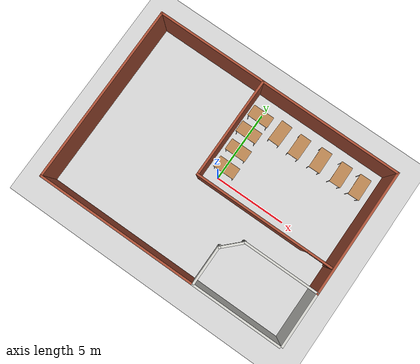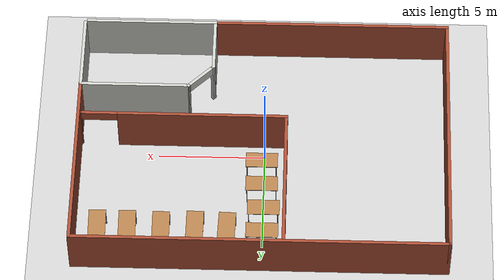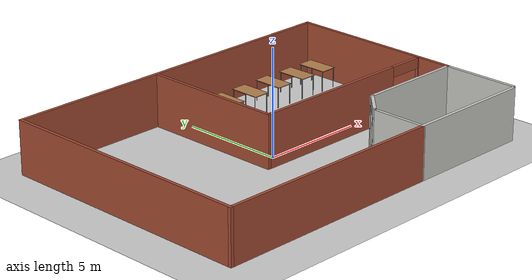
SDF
<sdf version="1.7">
 <world name="default">
  <light name="sun" type="directional">
   <pose>0 0 10 0 -0 0</pose>
   <diffuse>0.8 0.8 0.8 1</diffuse>
   <specular>0.2 0.2 0.2 1</specular>
   <attenuation>
    <range>1000</range>
    <constant>0.9</constant>
    <linear>0.01</linear>
    <quadratic>0.001</quadratic>
   </attenuation>
   <direction>-0.5 0.1 -0.9</direction>
   <spot><inner_angle>0</inner_angle><outer_angle>0</outer_angle><falloff>0</falloff></spot>
  </light>
  <model name="ground_plane">
   <static>1</static>
   <link name="link">
    <collision name="collision">
     <geometry><plane><normal>0 0 1</normal><size>100 100</size></plane></geometry>
     <surface><friction><ode><mu>100</mu><mu2>50</mu2></ode></friction></surface>
    </collision>
    <visual name="visual">
     <cast_shadows>0</cast_shadows>
     <geometry><plane><normal>0 0 1</normal><size>100 100</size></plane></geometry>
     <material>
      <script><uri>file://media/materials/scripts/gazebo.material</uri><name>Gazebo/Grey</name></script>
     </material>
    </visual>
   </link>
  </model>
  <gravity>0 0 -9.8</gravity>
  <magnetic_field>6e-06 2.3e-05 -4.2e-05</magnetic_field>
  <atmosphere type="adiabatic"/>
  <physics type="ode">
   <max_step_size>0.001</max_step_size>
   <real_time_factor>1</real_time_factor>
   <real_time_update_rate>1000</real_time_update_rate>
  </physics>
  <scene><ambient>0.4 0.4 0.4 1</ambient><background>0.7 0.7 0.7 1</background><shadows>1</shadows></scene>
  <spherical_coordinates>
   <surface_model>EARTH_WGS84</surface_model>
   <latitude_deg>0</latitude_deg>
   <longitude_deg>0</longitude_deg>
   <elevation>0</elevation>
   <heading_deg>0</heading_deg>
  </spherical_coordinates>
  <model name="FloorPlan1BHK">
   <pose>0.093457 0.037177 0 0 -0 0</pose>
   <link name="Wall_0">
    <collision name="Wall_0_Collision">
     <geometry><box><size>17.5 0.15 2.5</size></box></geometry>
     <pose>0 0 1.25 0 -0 0</pose>
    </collision>
    <visual name="Wall_0_Visual">
     <pose>0 0 1.25 0 -0 0</pose>
     <geometry><box><size>17.5 0.15 2.5</size></box></geometry>
     <material>
      <script><uri>file://media/materials/scripts/gazebo.material</uri><name>Gazebo/Bricks</name></script>
      <ambient>1 1 1 1</ambient>
     </material>
     <meta><layer>0</layer></meta>
    </visual>
    <pose>0 6.17506 0 0 -0 0</pose>
   </link>
   <link name="Wall_10">
    <collision name="Wall_10_Collision">
     <geometry><box><size>2.77214 0.15 2.5</size></box></geometry>
     <pose>0 0 1.25 0 -0 0</pose>
    </collision>
    <visual name="Wall_10_Visual">
     <pose>0 0 1.25 0 -0 0</pose>
     <geometry><box><size>2.77214 0.15 2.5</size></box></geometry>
     <material>
      <script><uri>file://media/materials/scripts/gazebo.material</uri><name>Gazebo/CeilingTiled</name></script>
      <ambient>1 1 1 1</ambient>
     </material>
     <meta><layer>0</layer></meta>
    </visual>
    <pose>2.42713 -4.86387 0 0 -0 1.56917</pose>
   </link>
   <link name="Wall_11">
    <pose>2.99494 -2.98712 0 0 -0 0.785398</pose>
    <visual name="Wall_11_Visual_0">
     <pose>-0.778435 0 1.25 0 -0 0</pose>
     <geometry><box><size>0.19313 0.15 2.5</size></box></geometry>
     <material>
      <script><uri>file://media/materials/scripts/gazebo.material</uri><name>Gazebo/CeilingTiled</name></script>
      <ambient>1 1 1 1</ambient>
     </material>
     <meta><layer>0</layer></meta>
    </visual>
    <collision name="Wall_11_Collision_0">
     <geometry><box><size>0.19313 0.15 2.5</size></box></geometry>
     <pose>-0.778435 0 1.25 0 -0 0</pose>
    </collision>
    <visual name="Wall_11_Visual_1">
     <pose>0.80968 0 1.25 0 -0 0</pose>
     <geometry><box><size>0.13064 0.15 2.5</size></box></geometry>
     <material>
      <script><uri>file://media/materials/scripts/gazebo.material</uri><name>Gazebo/CeilingTiled</name></script>
      <ambient>1 1 1 1</ambient>
     </material>
     <meta><layer>0</layer></meta>
    </visual>
    <collision name="Wall_11_Collision_1">
     <geometry><box><size>0.13064 0.15 2.5</size></box></geometry>
     <pose>0.80968 0 1.25 0 -0 0</pose>
    </collision>
    <visual name="Wall_11_Visual_2">
     <pose>0.031245 0 2.25 0 -0 0</pose>
     <geometry><box><size>1.42623 0.15 0.5</size></box></geometry>
     <material>
      <script><uri>file://media/materials/scripts/gazebo.material</uri><name>Gazebo/CeilingTiled</name></script>
      <ambient>1 1 1 1</ambient>
     </material>
     <meta><layer>0</layer></meta>
    </visual>
    <collision name="Wall_11_Collision_2">
     <geometry><box><size>1.42623 0.15 0.5</size></box></geometry>
     <pose>0.031245 0 2.25 0 -0 0</pose>
    </collision>
   </link>
   <link name="Wall_12">
    <collision name="Wall_12_Collision">
     <geometry><box><size>5.25 0.15 2.5</size></box></geometry>
     <pose>0 0 1.25 0 -0 0</pose>
    </collision>
    <visual name="Wall_12_Visual">
     <pose>0 0 1.25 0 -0 0</pose>
     <geometry><box><size>5.25 0.15 2.5</size></box></geometry>
     <material>
      <script><uri>file://media/materials/scripts/gazebo.material</uri><name>Gazebo/CeilingTiled</name></script>
      <ambient>1 1 1 1</ambient>
     </material>
     <meta><layer>0</layer></meta>
    </visual>
    <pose>6.11062 -2.42143 0 0 -0 0</pose>
   </link>
   <link name="Wall_14">
    <collision name="Wall_14_Collision">
     <geometry><box><size>11.25 0.15 2.5</size></box></geometry>
     <pose>0 0 1.25 0 -0 0</pose>
    </collision>
    <visual name="Wall_14_Visual">
     <pose>0 0 1.25 0 -0 0</pose>
     <geometry><box><size>11.25 0.15 2.5</size></box></geometry>
     <material>
      <script><uri>file://media/materials/scripts/gazebo.material</uri><name>Gazebo/Bricks</name></script>
      <ambient>1 1 1 1</ambient>
     </material>
     <meta><layer>0</layer></meta>
    </visual>
    <pose>-3.125 -6.17494 0 0 -0 3.14159</pose>
   </link>
   <link name="Wall_16">
    <collision name="Wall_16_Collision">
     <geometry><box><size>8.75 0.15 2.5</size></box></geometry>
     <pose>0 0 1.25 0 -0 0</pose>
    </collision>
    <visual name="Wall_16_Visual">
     <pose>0 0 1.25 0 -0 0</pose>
     <geometry><box><size>8.75 0.15 2.5</size></box></geometry>
     <material>
      <script><uri>file://media/materials/scripts/gazebo.material</uri><name>Gazebo/Bricks</name></script>
      <ambient>1 1 1 1</ambient>
     </material>
     <meta><layer>0</layer></meta>
    </visual>
    <pose>8.675 1.87506 0 0 -0 -1.5708</pose>
   </link>
   <link name="Wall_25">
    <collision name="Wall_25_Collision">
     <geometry><box><size>3.75 0.15 2.5</size></box></geometry>
     <pose>0 0 1.25 0 -0 0</pose>
    </collision>
    <visual name="Wall_25_Visual">
     <pose>0 0 1.25 0 -0 0</pose>
     <geometry><box><size>3.75 0.15 2.5</size></box></geometry>
     <material>
      <script><uri>file://media/materials/scripts/gazebo.material</uri><name>Gazebo/CeilingTiled</name></script>
      <ambient>1 1 1 1</ambient>
     </material>
     <meta><layer>0</layer></meta>
    </visual>
    <pose>8.66896 -4.25988 0 0 -0 1.5708</pose>
   </link>
   <link name="Wall_27">
    <collision name="Wall_27_Collision">
     <geometry><box><size>6.25 0.15 2.5</size></box></geometry>
     <pose>0 0 1.25 0 -0 0</pose>
    </collision>
    <visual name="Wall_27_Visual">
     <pose>0 0 1.25 0 -0 0</pose>
     <geometry><box><size>6.25 0.15 2.5</size></box></geometry>
     <material>
      <script><uri>file://media/materials/scripts/gazebo.material</uri><name>Gazebo/CeilingTiled</name></script>
      <ambient>1 1 1 1</ambient>
     </material>
     <meta><layer>0</layer></meta>
    </visual>
    <pose>5.475 -6.17494 0 0 -0 0</pose>
   </link>
   <link name="Wall_5">
    <collision name="Wall_5_Collision">
     <geometry><box><size>12.5 0.15 2.5</size></box></geometry>
     <pose>0 0 1.25 0 -0 0</pose>
    </collision>
    <visual name="Wall_5_Visual">
     <pose>0 0 1.25 0 -0 0</pose>
     <geometry><box><size>12.5 0.15 2.5</size></box></geometry>
     <material>
      <script><uri>file://media/materials/scripts/gazebo.material</uri><name>Gazebo/Bricks</name></script>
      <ambient>1 1 1 1</ambient>
     </material>
     <meta><layer>0</layer></meta>
    </visual>
    <pose>-8.675 6e-05 0 0 -0 1.5708</pose>
   </link>
   <link name="Wall_7">
    <collision name="Wall_7_Collision">
     <geometry><box><size>7 0.15 2.5</size></box></geometry>
     <pose>0 0 1.25 0 -0 0</pose>
    </collision>
    <visual name="Wall_7_Visual">
     <pose>0 0 1.25 0 -0 0</pose>
     <geometry><box><size>7 0.15 2.5</size></box></geometry>
     <material>
      <script><uri>file://media/materials/scripts/gazebo.material</uri><name>Gazebo/Bricks</name></script>
      <ambient>1 1 1 1</ambient>
     </material>
     <meta><layer>0</layer></meta>
    </visual>
    <pose>-1.08862 2.68888 0 0 -0 -1.5708</pose>
   </link>
   <link name="Wall_8">
    <pose>3.71138 -0.73612 0 0 -0 0</pose>
    <visual name="Wall_8_Visual_0">
     <pose>-0.867842 0 1.25 0 -0 0</pose>
     <geometry><box><size>8.01432 0.15 2.5</size></box></geometry>
     <material>
      <script><uri>file://media/materials/scripts/gazebo.material</uri><name>Gazebo/Bricks</name></script>
      <ambient>1 1 1 1</ambient>
     </material>
     <meta><layer>0</layer></meta>
    </visual>
    <collision name="Wall_8_Collision_0">
     <geometry><box><size>8.01432 0.15 2.5</size></box></geometry>
     <pose>-0.867842 0 1.25 0 -0 0</pose>
    </collision>
    <visual name="Wall_8_Visual_1">
     <pose>4.84937 0 1.25 0 -0 0</pose>
     <geometry><box><size>0.051255 0.15 2.5</size></box></geometry>
     <material>
      <script><uri>file://media/materials/scripts/gazebo.material</uri><name>Gazebo/Bricks</name></script>
      <ambient>1 1 1 1</ambient>
     </material>
     <meta><layer>0</layer></meta>
    </visual>
    <collision name="Wall_8_Collision_1">
     <geometry><box><size>0.051255 0.15 2.5</size></box></geometry>
     <pose>4.84937 0 1.25 0 -0 0</pose>
    </collision>
    <visual name="Wall_8_Visual_2">
     <pose>3.98153 0 2.25 0 -0 0</pose>
     <geometry><box><size>1.68443 0.15 0.5</size></box></geometry>
     <material>
      <script><uri>file://media/materials/scripts/gazebo.material</uri><name>Gazebo/Bricks</name></script>
      <ambient>1 1 1 1</ambient>
     </material>
     <meta><layer>0</layer></meta>
    </visual>
    <collision name="Wall_8_Collision_2">
     <geometry><box><size>1.68443 0.15 0.5</size></box></geometry>
     <pose>3.98153 0 2.25 0 -0 0</pose>
    </collision>
   </link>
   <static>1</static>
  </model>
  <model name="table">
   <static>1</static>
   <link name="link">
    <collision name="surface">
     <pose>0 0 1 0 -0 0</pose>
     <geometry><box><size>1.5 0.8 0.03</size></box></geometry>
     <surface><friction><ode><mu>0.6</mu><mu2>0.6</mu2></ode></friction></surface>
    </collision>
    <visual name="visual1">
     <pose>0 0 1 0 -0 0</pose>
     <geometry><box><size>1.5 0.8 0.03</size></box></geometry>
     <material>
      <script><uri>file://media/materials/scripts/gazebo.material</uri><name>Gazebo/Wood</name></script>
     </material>
    </visual>
    <collision name="front_left_leg">
     <pose>0.68 0.38 0.5 0 -0 0</pose>
     <geometry><cylinder><radius>0.02</radius><length>1</length></cylinder></geometry>
    </collision>
    <visual name="front_left_leg">
     <pose>0.68 0.38 0.5 0 -0 0</pose>
     <geometry><cylinder><radius>0.02</radius><length>1</length></cylinder></geometry>
     <material>
      <script><uri>file://media/materials/scripts/gazebo.material</uri><name>Gazebo/Grey</name></script>
     </material>
    </visual>
    <collision name="front_right_leg">
     <pose>0.68 -0.38 0.5 0 -0 0</pose>
     <geometry><cylinder><radius>0.02</radius><length>1</length></cylinder></geometry>
    </collision>
    <visual name="front_right_leg">
     <pose>0.68 -0.38 0.5 0 -0 0</pose>
     <geometry><cylinder><radius>0.02</radius><length>1</length></cylinder></geometry>
     <material>
      <script><uri>file://media/materials/scripts/gazebo.material</uri><name>Gazebo/Grey</name></script>
     </material>
    </visual>
    <collision name="back_right_leg">
     <pose>-0.68 -0.38 0.5 0 -0 0</pose>
     <geometry><cylinder><radius>0.02</radius><length>1</length></cylinder></geometry>
    </collision>
    <visual name="back_right_leg">
     <pose>-0.68 -0.38 0.5 0 -0 0</pose>
     <geometry><cylinder><radius>0.02</radius><length>1</length></cylinder></geometry>
     <material>
      <script><uri>file://media/materials/scripts/gazebo.material</uri><name>Gazebo/Grey</name></script>
     </material>
    </visual>
    <collision name="back_left_leg">
     <pose>-0.68 0.38 0.5 0 -0 0</pose>
     <geometry><cylinder><radius>0.02</radius><length>1</length></cylinder></geometry>
    </collision>
    <visual name="back_left_leg">
     <pose>-0.68 0.38 0.5 0 -0 0</pose>
     <geometry><cylinder><radius>0.02</radius><length>1</length></cylinder></geometry>
     <material>
      <script><uri>file://media/materials/scripts/gazebo.material</uri><name>Gazebo/Grey</name></script>
     </material>
    </visual>
   </link>
   <pose>1.64923 4.51874 0 0 -0 1.53697</pose>
  </model>
  <model name="table_0">
   <static>1</static>
   <link name="link">
    <collision name="surface">
     <pose>0 0 1 0 -0 0</pose>
     <geometry><box><size>1.5 0.8 0.03</size></box></geometry>
     <surface><friction><ode><mu>0.6</mu><mu2>0.6</mu2></ode></friction></surface>
    </collision>
    <visual name="visual1">
     <pose>0 0 1 0 -0 0</pose>
     <geometry><box><size>1.5 0.8 0.03</size></box></geometry>
     <material>
      <script><uri>file://media/materials/scripts/gazebo.material</uri><name>Gazebo/Wood</name></script>
     </material>
    </visual>
    <collision name="front_left_leg">
     <pose>0.68 0.38 0.5 0 -0 0</pose>
     <geometry><cylinder><radius>0.02</radius><length>1</length></cylinder></geometry>
    </collision>
    <visual name="front_left_leg">
     <pose>0.68 0.38 0.5 0 -0 0</pose>
     <geometry><cylinder><radius>0.02</radius><length>1</length></cylinder></geometry>
     <material>
      <script><uri>file://media/materials/scripts/gazebo.material</uri><name>Gazebo/Grey</name></script>
     </material>
    </visual>
    <collision name="front_right_leg">
     <pose>0.68 -0.38 0.5 0 -0 0</pose>
     <geometry><cylinder><radius>0.02</radius><length>1</length></cylinder></geometry>
    </collision>
    <visual name="front_right_leg">
     <pose>0.68 -0.38 0.5 0 -0 0</pose>
     <geometry><cylinder><radius>0.02</radius><length>1</length></cylinder></geometry>
     <material>
      <script><uri>file://media/materials/scripts/gazebo.material</uri><name>Gazebo/Grey</name></script>
     </material>
    </visual>
    <collision name="back_right_leg">
     <pose>-0.68 -0.38 0.5 0 -0 0</pose>
     <geometry><cylinder><radius>0.02</radius><length>1</length></cylinder></geometry>
    </collision>
    <visual name="back_right_leg">
     <pose>-0.68 -0.38 0.5 0 -0 0</pose>
     <geometry><cylinder><radius>0.02</radius><length>1</length></cylinder></geometry>
     <material>
      <script><uri>file://media/materials/scripts/gazebo.material</uri><name>Gazebo/Grey</name></script>
     </material>
    </visual>
    <collision name="back_left_leg">
     <pose>-0.68 0.38 0.5 0 -0 0</pose>
     <geometry><cylinder><radius>0.02</radius><length>1</length></cylinder></geometry>
    </collision>
    <visual name="back_left_leg">
     <pose>-0.68 0.38 0.5 0 -0 0</pose>
     <geometry><cylinder><radius>0.02</radius><length>1</length></cylinder></geometry>
     <material>
      <script><uri>file://media/materials/scripts/gazebo.material</uri><name>Gazebo/Grey</name></script>
     </material>
    </visual>
   </link>
   <pose>3.1259 4.48609 0 0 0 -1.57662</pose>
  </model>
  <model name="table_1">
   <static>1</static>
   <link name="link">
    <collision name="surface">
     <pose>0 0 1 0 -0 0</pose>
     <geometry><box><size>1.5 0.8 0.03</size></box></geometry>
     <surface><friction><ode><mu>0.6</mu><mu2>0.6</mu2></ode></friction></surface>
    </collision>
    <visual name="visual1">
     <pose>0 0 1 0 -0 0</pose>
     <geometry><box><size>1.5 0.8 0.03</size></box></geometry>
     <material>
      <script><uri>file://media/materials/scripts/gazebo.material</uri><name>Gazebo/Wood</name></script>
     </material>
    </visual>
    <collision name="front_left_leg">
     <pose>0.68 0.38 0.5 0 -0 0</pose>
     <geometry><cylinder><radius>0.02</radius><length>1</length></cylinder></geometry>
    </collision>
    <visual name="front_left_leg">
     <pose>0.68 0.38 0.5 0 -0 0</pose>
     <geometry><cylinder><radius>0.02</radius><length>1</length></cylinder></geometry>
     <material>
      <script><uri>file://media/materials/scripts/gazebo.material</uri><name>Gazebo/Grey</name></script>
     </material>
    </visual>
    <collision name="front_right_leg">
     <pose>0.68 -0.38 0.5 0 -0 0</pose>
     <geometry><cylinder><radius>0.02</radius><length>1</length></cylinder></geometry>
    </collision>
    <visual name="front_right_leg">
     <pose>0.68 -0.38 0.5 0 -0 0</pose>
     <geometry><cylinder><radius>0.02</radius><length>1</length></cylinder></geometry>
     <material>
      <script><uri>file://media/materials/scripts/gazebo.material</uri><name>Gazebo/Grey</name></script>
     </material>
    </visual>
    <collision name="back_right_leg">
     <pose>-0.68 -0.38 0.5 0 -0 0</pose>
     <geometry><cylinder><radius>0.02</radius><length>1</length></cylinder></geometry>
    </collision>
    <visual name="back_right_leg">
     <pose>-0.68 -0.38 0.5 0 -0 0</pose>
     <geometry><cylinder><radius>0.02</radius><length>1</length></cylinder></geometry>
     <material>
      <script><uri>file://media/materials/scripts/gazebo.material</uri><name>Gazebo/Grey</name></script>
     </material>
    </visual>
    <collision name="back_left_leg">
     <pose>-0.68 0.38 0.5 0 -0 0</pose>
     <geometry><cylinder><radius>0.02</radius><length>1</length></cylinder></geometry>
    </collision>
    <visual name="back_left_leg">
     <pose>-0.68 0.38 0.5 0 -0 0</pose>
     <geometry><cylinder><radius>0.02</radius><length>1</length></cylinder></geometry>
     <material>
      <script><uri>file://media/materials/scripts/gazebo.material</uri><name>Gazebo/Grey</name></script>
     </material>
    </visual>
   </link>
   <pose>4.69432 4.55041 0 0 0 -1.56217</pose>
  </model>
  <model name="table_2">
   <static>1</static>
   <link name="link">
    <collision name="surface">
     <pose>0 0 1 0 -0 0</pose>
     <geometry><box><size>1.5 0.8 0.03</size></box></geometry>
     <surface><friction><ode><mu>0.6</mu><mu2>0.6</mu2></ode></friction></surface>
    </collision>
    <visual name="visual1">
     <pose>0 0 1 0 -0 0</pose>
     <geometry><box><size>1.5 0.8 0.03</size></box></geometry>
     <material>
      <script><uri>file://media/materials/scripts/gazebo.material</uri><name>Gazebo/Wood</name></script>
     </material>
    </visual>
    <collision name="front_left_leg">
     <pose>0.68 0.38 0.5 0 -0 0</pose>
     <geometry><cylinder><radius>0.02</radius><length>1</length></cylinder></geometry>
    </collision>
    <visual name="front_left_leg">
     <pose>0.68 0.38 0.5 0 -0 0</pose>
     <geometry><cylinder><radius>0.02</radius><length>1</length></cylinder></geometry>
     <material>
      <script><uri>file://media/materials/scripts/gazebo.material</uri><name>Gazebo/Grey</name></script>
     </material>
    </visual>
    <collision name="front_right_leg">
     <pose>0.68 -0.38 0.5 0 -0 0</pose>
     <geometry><cylinder><radius>0.02</radius><length>1</length></cylinder></geometry>
    </collision>
    <visual name="front_right_leg">
     <pose>0.68 -0.38 0.5 0 -0 0</pose>
     <geometry><cylinder><radius>0.02</radius><length>1</length></cylinder></geometry>
     <material>
      <script><uri>file://media/materials/scripts/gazebo.material</uri><name>Gazebo/Grey</name></script>
     </material>
    </visual>
    <collision name="back_right_leg">
     <pose>-0.68 -0.38 0.5 0 -0 0</pose>
     <geometry><cylinder><radius>0.02</radius><length>1</length></cylinder></geometry>
    </collision>
    <visual name="back_right_leg">
     <pose>-0.68 -0.38 0.5 0 -0 0</pose>
     <geometry><cylinder><radius>0.02</radius><length>1</length></cylinder></geometry>
     <material>
      <script><uri>file://media/materials/scripts/gazebo.material</uri><name>Gazebo/Grey</name></script>
     </material>
    </visual>
    <collision name="back_left_leg">
     <pose>-0.68 0.38 0.5 0 -0 0</pose>
     <geometry><cylinder><radius>0.02</radius><length>1</length></cylinder></geometry>
    </collision>
    <visual name="back_left_leg">
     <pose>-0.68 0.38 0.5 0 -0 0</pose>
     <geometry><cylinder><radius>0.02</radius><length>1</length></cylinder></geometry>
     <material>
      <script><uri>file://media/materials/scripts/gazebo.material</uri><name>Gazebo/Grey</name></script>
     </material>
    </visual>
   </link>
   <pose>6.25807 4.53402 0 0 0 -1.55344</pose>
  </model>
  <model name="table_3">
   <static>1</static>
   <link name="link">
    <collision name="surface">
     <pose>0 0 1 0 -0 0</pose>
     <geometry><box><size>1.5 0.8 0.03</size></box></geometry>
     <surface><friction><ode><mu>0.6</mu><mu2>0.6</mu2></ode></friction></surface>
    </collision>
    <visual name="visual1">
     <pose>0 0 1 0 -0 0</pose>
     <geometry><box><size>1.5 0.8 0.03</size></box></geometry>
     <material>
      <script><uri>file://media/materials/scripts/gazebo.material</uri><name>Gazebo/Wood</name></script>
     </material>
    </visual>
    <collision name="front_left_leg">
     <pose>0.68 0.38 0.5 0 -0 0</pose>
     <geometry><cylinder><radius>0.02</radius><length>1</length></cylinder></geometry>
    </collision>
    <visual name="front_left_leg">
     <pose>0.68 0.38 0.5 0 -0 0</pose>
     <geometry><cylinder><radius>0.02</radius><length>1</length></cylinder></geometry>
     <material>
      <script><uri>file://media/materials/scripts/gazebo.material</uri><name>Gazebo/Grey</name></script>
     </material>
    </visual>
    <collision name="front_right_leg">
     <pose>0.68 -0.38 0.5 0 -0 0</pose>
     <geometry><cylinder><radius>0.02</radius><length>1</length></cylinder></geometry>
    </collision>
    <visual name="front_right_leg">
     <pose>0.68 -0.38 0.5 0 -0 0</pose>
     <geometry><cylinder><radius>0.02</radius><length>1</length></cylinder></geometry>
     <material>
      <script><uri>file://media/materials/scripts/gazebo.material</uri><name>Gazebo/Grey</name></script>
     </material>
    </visual>
    <collision name="back_right_leg">
     <pose>-0.68 -0.38 0.5 0 -0 0</pose>
     <geometry><cylinder><radius>0.02</radius><length>1</length></cylinder></geometry>
    </collision>
    <visual name="back_right_leg">
     <pose>-0.68 -0.38 0.5 0 -0 0</pose>
     <geometry><cylinder><radius>0.02</radius><length>1</length></cylinder></geometry>
     <material>
      <script><uri>file://media/materials/scripts/gazebo.material</uri><name>Gazebo/Grey</name></script>
     </material>
    </visual>
    <collision name="back_left_leg">
     <pose>-0.68 0.38 0.5 0 -0 0</pose>
     <geometry><cylinder><radius>0.02</radius><length>1</length></cylinder></geometry>
    </collision>
    <visual name="back_left_leg">
     <pose>-0.68 0.38 0.5 0 -0 0</pose>
     <geometry><cylinder><radius>0.02</radius><length>1</length></cylinder></geometry>
     <material>
      <script><uri>file://media/materials/scripts/gazebo.material</uri><name>Gazebo/Grey</name></script>
     </material>
    </visual>
   </link>
   <pose>7.64877 4.54148 0 0 0 -1.55441</pose>
  </model>
  <model name="table_4">
   <static>1</static>
   <link name="link">
    <collision name="surface">
     <pose>0 0 1 0 -0 0</pose>
     <geometry><box><size>1.5 0.8 0.03</size></box></geometry>
     <surface><friction><ode><mu>0.6</mu><mu2>0.6</mu2></ode></friction></surface>
    </collision>
    <visual name="visual1">
     <pose>0 0 1 0 -0 0</pose>
     <geometry><box><size>1.5 0.8 0.03</size></box></geometry>
     <material>
      <script><uri>file://media/materials/scripts/gazebo.material</uri><name>Gazebo/Wood</name></script>
     </material>
    </visual>
    <collision name="front_left_leg">
     <pose>0.68 0.38 0.5 0 -0 0</pose>
     <geometry><cylinder><radius>0.02</radius><length>1</length></cylinder></geometry>
    </collision>
    <visual name="front_left_leg">
     <pose>0.68 0.38 0.5 0 -0 0</pose>
     <geometry><cylinder><radius>0.02</radius><length>1</length></cylinder></geometry>
     <material>
      <script><uri>file://media/materials/scripts/gazebo.material</uri><name>Gazebo/Grey</name></script>
     </material>
    </visual>
    <collision name="front_right_leg">
     <pose>0.68 -0.38 0.5 0 -0 0</pose>
     <geometry><cylinder><radius>0.02</radius><length>1</length></cylinder></geometry>
    </collision>
    <visual name="front_right_leg">
     <pose>0.68 -0.38 0.5 0 -0 0</pose>
     <geometry><cylinder><radius>0.02</radius><length>1</length></cylinder></geometry>
     <material>
      <script><uri>file://media/materials/scripts/gazebo.material</uri><name>Gazebo/Grey</name></script>
     </material>
    </visual>
    <collision name="back_right_leg">
     <pose>-0.68 -0.38 0.5 0 -0 0</pose>
     <geometry><cylinder><radius>0.02</radius><length>1</length></cylinder></geometry>
    </collision>
    <visual name="back_right_leg">
     <pose>-0.68 -0.38 0.5 0 -0 0</pose>
     <geometry><cylinder><radius>0.02</radius><length>1</length></cylinder></geometry>
     <material>
      <script><uri>file://media/materials/scripts/gazebo.material</uri><name>Gazebo/Grey</name></script>
     </material>
    </visual>
    <collision name="back_left_leg">
     <pose>-0.68 0.38 0.5 0 -0 0</pose>
     <geometry><cylinder><radius>0.02</radius><length>1</length></cylinder></geometry>
    </collision>
    <visual name="back_left_leg">
     <pose>-0.68 0.38 0.5 0 -0 0</pose>
     <geometry><cylinder><radius>0.02</radius><length>1</length></cylinder></geometry>
     <material>
      <script><uri>file://media/materials/scripts/gazebo.material</uri><name>Gazebo/Grey</name></script>
     </material>
    </visual>
   </link>
   <pose>-0.020977 3.43806 0 0 -0 0</pose>
  </model>
  <model name="table_5">
   <static>1</static>
   <link name="link">
    <collision name="surface">
     <pose>0 0 1 0 -0 0</pose>
     <geometry><box><size>1.5 0.8 0.03</size></box></geometry>
     <surface><friction><ode><mu>0.6</mu><mu2>0.6</mu2></ode></friction></surface>
    </collision>
    <visual name="visual1">
     <pose>0 0 1 0 -0 0</pose>
     <geometry><box><size>1.5 0.8 0.03</size></box></geometry>
     <material>
      <script><uri>file://media/materials/scripts/gazebo.material</uri><name>Gazebo/Wood</name></script>
     </material>
    </visual>
    <collision name="front_left_leg">
     <pose>0.68 0.38 0.5 0 -0 0</pose>
     <geometry><cylinder><radius>0.02</radius><length>1</length></cylinder></geometry>
    </collision>
    <visual name="front_left_leg">
     <pose>0.68 0.38 0.5 0 -0 0</pose>
     <geometry><cylinder><radius>0.02</radius><length>1</length></cylinder></geometry>
     <material>
      <script><uri>file://media/materials/scripts/gazebo.material</uri><name>Gazebo/Grey</name></script>
     </material>
    </visual>
    <collision name="front_right_leg">
     <pose>0.68 -0.38 0.5 0 -0 0</pose>
     <geometry><cylinder><radius>0.02</radius><length>1</length></cylinder></geometry>
    </collision>
    <visual name="front_right_leg">
     <pose>0.68 -0.38 0.5 0 -0 0</pose>
     <geometry><cylinder><radius>0.02</radius><length>1</length></cylinder></geometry>
     <material>
      <script><uri>file://media/materials/scripts/gazebo.material</uri><name>Gazebo/Grey</name></script>
     </material>
    </visual>
    <collision name="back_right_leg">
     <pose>-0.68 -0.38 0.5 0 -0 0</pose>
     <geometry><cylinder><radius>0.02</radius><length>1</length></cylinder></geometry>
    </collision>
    <visual name="back_right_leg">
     <pose>-0.68 -0.38 0.5 0 -0 0</pose>
     <geometry><cylinder><radius>0.02</radius><length>1</length></cylinder></geometry>
     <material>
      <script><uri>file://media/materials/scripts/gazebo.material</uri><name>Gazebo/Grey</name></script>
     </material>
    </visual>
    <collision name="back_left_leg">
     <pose>-0.68 0.38 0.5 0 -0 0</pose>
     <geometry><cylinder><radius>0.02</radius><length>1</length></cylinder></geometry>
    </collision>
    <visual name="back_left_leg">
     <pose>-0.68 0.38 0.5 0 -0 0</pose>
     <geometry><cylinder><radius>0.02</radius><length>1</length></cylinder></geometry>
     <material>
      <script><uri>file://media/materials/scripts/gazebo.material</uri><name>Gazebo/Grey</name></script>
     </material>
    </visual>
   </link>
   <pose>0.016613 4.70366 0 0 -0 0</pose>
  </model>
  <model name="table_6">
   <static>1</static>
   <link name="link">
    <collision name="surface">
     <pose>0 0 1 0 -0 0</pose>
     <geometry><box><size>1.5 0.8 0.03</size></box></geometry>
     <surface><friction><ode><mu>0.6</mu><mu2>0.6</mu2></ode></friction></surface>
    </collision>
    <visual name="visual1">
     <pose>0 0 1 0 -0 0</pose>
     <geometry><box><size>1.5 0.8 0.03</size></box></geometry>
     <material>
      <script><uri>file://media/materials/scripts/gazebo.material</uri><name>Gazebo/Wood</name></script>
     </material>
    </visual>
    <collision name="front_left_leg">
     <pose>0.68 0.38 0.5 0 -0 0</pose>
     <geometry><cylinder><radius>0.02</radius><length>1</length></cylinder></geometry>
    </collision>
    <visual name="front_left_leg">
     <pose>0.68 0.38 0.5 0 -0 0</pose>
     <geometry><cylinder><radius>0.02</radius><length>1</length></cylinder></geometry>
     <material>
      <script><uri>file://media/materials/scripts/gazebo.material</uri><name>Gazebo/Grey</name></script>
     </material>
    </visual>
    <collision name="front_right_leg">
     <pose>0.68 -0.38 0.5 0 -0 0</pose>
     <geometry><cylinder><radius>0.02</radius><length>1</length></cylinder></geometry>
    </collision>
    <visual name="front_right_leg">
     <pose>0.68 -0.38 0.5 0 -0 0</pose>
     <geometry><cylinder><radius>0.02</radius><length>1</length></cylinder></geometry>
     <material>
      <script><uri>file://media/materials/scripts/gazebo.material</uri><name>Gazebo/Grey</name></script>
     </material>
    </visual>
    <collision name="back_right_leg">
     <pose>-0.68 -0.38 0.5 0 -0 0</pose>
     <geometry><cylinder><radius>0.02</radius><length>1</length></cylinder></geometry>
    </collision>
    <visual name="back_right_leg">
     <pose>-0.68 -0.38 0.5 0 -0 0</pose>
     <geometry><cylinder><radius>0.02</radius><length>1</length></cylinder></geometry>
     <material>
      <script><uri>file://media/materials/scripts/gazebo.material</uri><name>Gazebo/Grey</name></script>
     </material>
    </visual>
    <collision name="back_left_leg">
     <pose>-0.68 0.38 0.5 0 -0 0</pose>
     <geometry><cylinder><radius>0.02</radius><length>1</length></cylinder></geometry>
    </collision>
    <visual name="back_left_leg">
     <pose>-0.68 0.38 0.5 0 -0 0</pose>
     <geometry><cylinder><radius>0.02</radius><length>1</length></cylinder></geometry>
     <material>
      <script><uri>file://media/materials/scripts/gazebo.material</uri><name>Gazebo/Grey</name></script>
     </material>
    </visual>
   </link>
   <pose>0.093442 2.10467 0 0 -0 0</pose>
  </model>
  <model name="table_7">
   <static>1</static>
   <link name="link">
    <collision name="surface">
     <pose>0 0 1 0 -0 0</pose>
     <geometry><box><size>1.5 0.8 0.03</size></box></geometry>
     <surface><friction><ode><mu>0.6</mu><mu2>0.6</mu2></ode></friction></surface>
    </collision>
    <visual name="visual1">
     <pose>0 0 1 0 -0 0</pose>
     <geometry><box><size>1.5 0.8 0.03</size></box></geometry>
     <material>
      <script><uri>file://media/materials/scripts/gazebo.material</uri><name>Gazebo/Wood</name></script>
     </material>
    </visual>
    <collision name="front_left_leg">
     <pose>0.68 0.38 0.5 0 -0 0</pose>
     <geometry><cylinder><radius>0.02</radius><length>1</length></cylinder></geometry>
    </collision>
    <visual name="front_left_leg">
     <pose>0.68 0.38 0.5 0 -0 0</pose>
     <geometry><cylinder><radius>0.02</radius><length>1</length></cylinder></geometry>
     <material>
      <script><uri>file://media/materials/scripts/gazebo.material</uri><name>Gazebo/Grey</name></script>
     </material>
    </visual>
    <collision name="front_right_leg">
     <pose>0.68 -0.38 0.5 0 -0 0</pose>
     <geometry><cylinder><radius>0.02</radius><length>1</length></cylinder></geometry>
    </collision>
    <visual name="front_right_leg">
     <pose>0.68 -0.38 0.5 0 -0 0</pose>
     <geometry><cylinder><radius>0.02</radius><length>1</length></cylinder></geometry>
     <material>
      <script><uri>file://media/materials/scripts/gazebo.material</uri><name>Gazebo/Grey</name></script>
     </material>
    </visual>
    <collision name="back_right_leg">
     <pose>-0.68 -0.38 0.5 0 -0 0</pose>
     <geometry><cylinder><radius>0.02</radius><length>1</length></cylinder></geometry>
    </collision>
    <visual name="back_right_leg">
     <pose>-0.68 -0.38 0.5 0 -0 0</pose>
     <geometry><cylinder><radius>0.02</radius><length>1</length></cylinder></geometry>
     <material>
      <script><uri>file://media/materials/scripts/gazebo.material</uri><name>Gazebo/Grey</name></script>
     </material>
    </visual>
    <collision name="back_left_leg">
     <pose>-0.68 0.38 0.5 0 -0 0</pose>
     <geometry><cylinder><radius>0.02</radius><length>1</length></cylinder></geometry>
    </collision>
    <visual name="back_left_leg">
     <pose>-0.68 0.38 0.5 0 -0 0</pose>
     <geometry><cylinder><radius>0.02</radius><length>1</length></cylinder></geometry>
     <material>
      <script><uri>file://media/materials/scripts/gazebo.material</uri><name>Gazebo/Grey</name></script>
     </material>
    </visual>
   </link>
   <pose>0.11746 0.78665 0 0 -0 0</pose>
  </model>
 </world>
</sdf>
